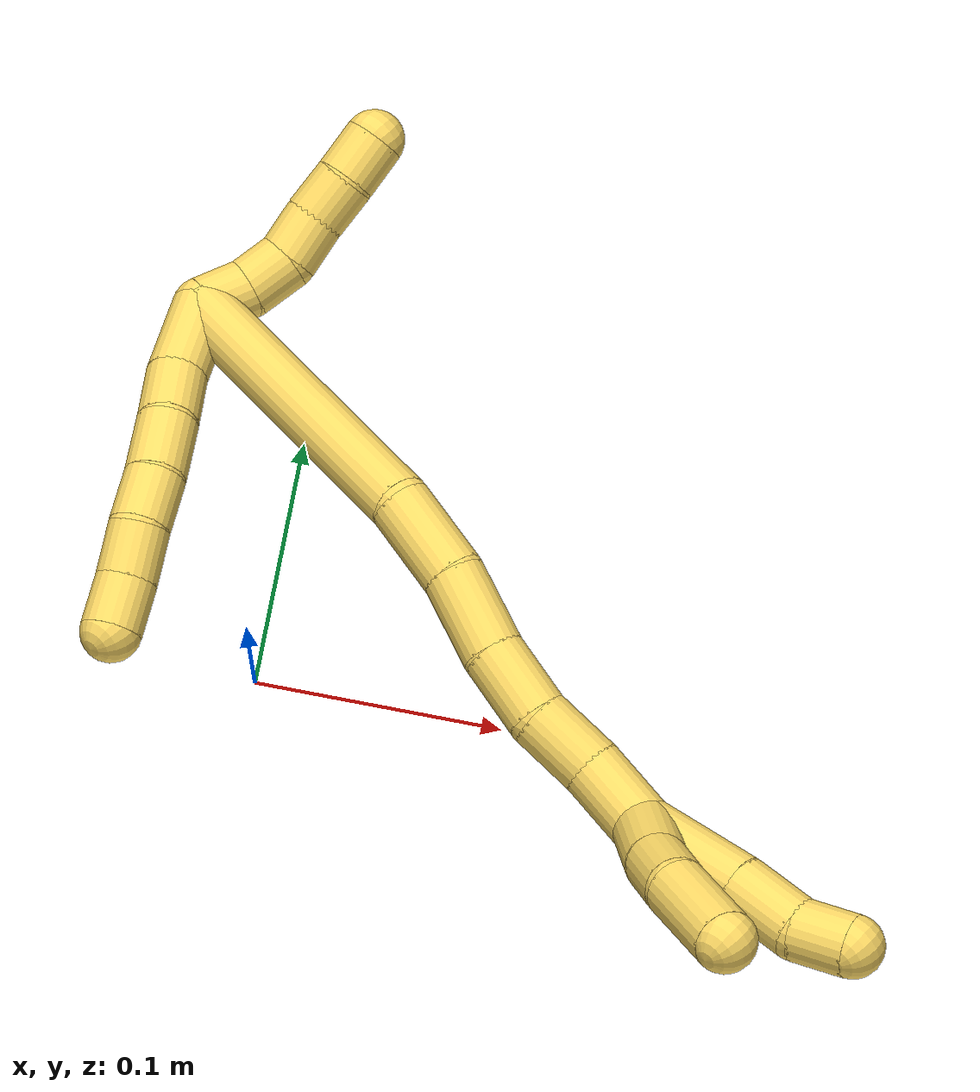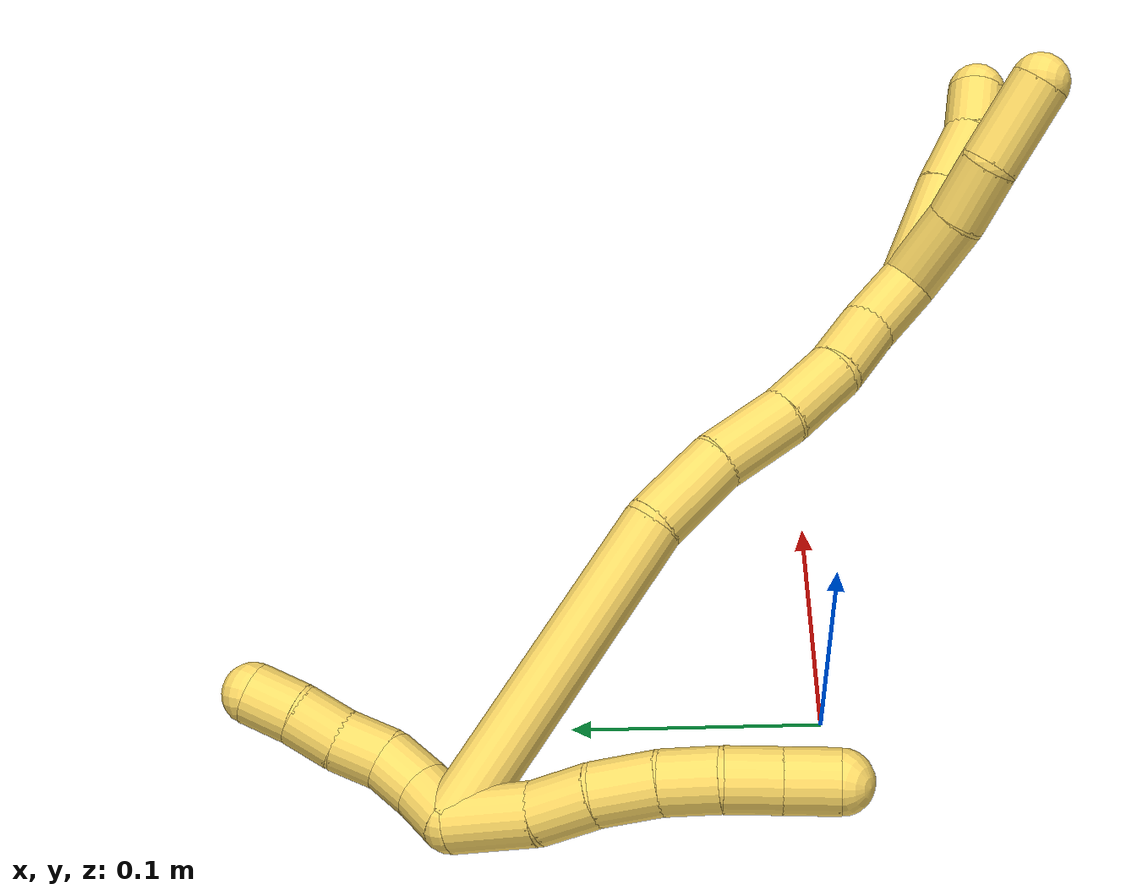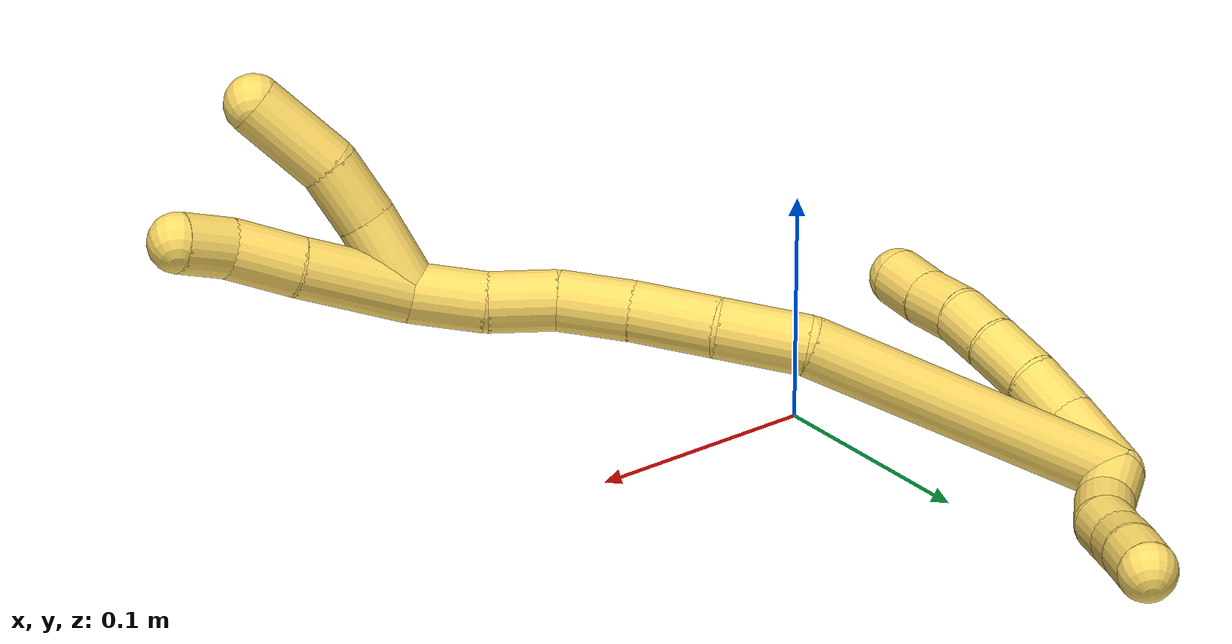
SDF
<sdf version="1.7">
 <world name="default">
  <model name="5">
   <static>0</static>
   <link name="5">
    <collision name="collision-cylinder-e_1_2_8">
     <pose>0.003651 -0.005954 0.01562 0.364192 0.215005 0.039738</pose>
     <geometry><cylinder><radius>0.0125</radius><length>0.034221</length></cylinder></geometry>
     <surface>
      <friction><ode><mu>1.16</mu><mu2>1.16</mu2><slip1>0</slip1><slip2>0</slip2></ode></friction>
      <contact><ode><kp>1e+06</kp><kd>1</kd><max_vel>0</max_vel><min_depth>0.001</min_depth></ode></contact>
     </surface>
    </collision>
    <visual name="visual-cylinder-e_1_2_8">
     <pose>0.003651 -0.005954 0.01562 0.364192 0.215005 0.039738</pose>
     <geometry><cylinder><radius>0.0125</radius><length>0.034221</length></cylinder></geometry>
     <material><ambient>1 0.858824 0.4 1</ambient></material>
    </visual>
    <collision name="collision-cylinder-e_2_8_9">
     <pose>0.012256 -0.01589 0.041576 0.367706 0.420613 0.079346</pose>
     <geometry><cylinder><radius>0.0125</radius><length>0.024267</length></cylinder></geometry>
     <surface>
      <friction><ode><mu>1.16</mu><mu2>1.16</mu2><slip1>0</slip1><slip2>0</slip2></ode></friction>
      <contact><ode><kp>1e+06</kp><kd>1</kd><max_vel>0</max_vel><min_depth>0.001</min_depth></ode></contact>
     </surface>
    </collision>
    <visual name="visual-cylinder-e_2_8_9">
     <pose>0.012256 -0.01589 0.041576 0.367706 0.420613 0.079346</pose>
     <geometry><cylinder><radius>0.0125</radius><length>0.024267</length></cylinder></geometry>
     <material><ambient>1 0.858824 0.4 1</ambient></material>
    </visual>
    <collision name="collision-cylinder-e_3_9_10">
     <pose>0.020749 -0.025283 0.0628 0.461195 0.283222 0.066916</pose>
     <geometry><cylinder><radius>0.0125</radius><length>0.025328</length></cylinder></geometry>
     <surface>
      <friction><ode><mu>1.16</mu><mu2>1.16</mu2><slip1>0</slip1><slip2>0</slip2></ode></friction>
      <contact><ode><kp>1e+06</kp><kd>1</kd><max_vel>0</max_vel><min_depth>0.001</min_depth></ode></contact>
     </surface>
    </collision>
    <visual name="visual-cylinder-e_3_9_10">
     <pose>0.020749 -0.025283 0.0628 0.461195 0.283222 0.066916</pose>
     <geometry><cylinder><radius>0.0125</radius><length>0.025328</length></cylinder></geometry>
     <material><ambient>1 0.858824 0.4 1</ambient></material>
    </visual>
    <collision name="collision-cylinder-e_4_10_11">
     <pose>0.026018 -0.035862 0.083582 0.481415 0.153837 0.037832</pose>
     <geometry><cylinder><radius>0.0125</radius><length>0.022589</length></cylinder></geometry>
     <surface>
      <friction><ode><mu>1.16</mu><mu2>1.16</mu2><slip1>0</slip1><slip2>0</slip2></ode></friction>
      <contact><ode><kp>1e+06</kp><kd>1</kd><max_vel>0</max_vel><min_depth>0.001</min_depth></ode></contact>
     </surface>
    </collision>
    <visual name="visual-cylinder-e_4_10_11">
     <pose>0.026018 -0.035862 0.083582 0.481415 0.153837 0.037832</pose>
     <geometry><cylinder><radius>0.0125</radius><length>0.022589</length></cylinder></geometry>
     <material><ambient>1 0.858824 0.4 1</ambient></material>
    </visual>
    <collision name="collision-cylinder-e_5_11_12">
     <pose>0.028243 -0.047692 0.102282 0.647607 0.044704 0.015005</pose>
     <geometry><cylinder><radius>0.0125</radius><length>0.02211</length></cylinder></geometry>
     <surface>
      <friction><ode><mu>1.16</mu><mu2>1.16</mu2><slip1>0</slip1><slip2>0</slip2></ode></friction>
      <contact><ode><kp>1e+06</kp><kd>1</kd><max_vel>0</max_vel><min_depth>0.001</min_depth></ode></contact>
     </surface>
    </collision>
    <visual name="visual-cylinder-e_5_11_12">
     <pose>0.028243 -0.047692 0.102282 0.647607 0.044704 0.015005</pose>
     <geometry><cylinder><radius>0.0125</radius><length>0.02211</length></cylinder></geometry>
     <material><ambient>1 0.858824 0.4 1</ambient></material>
    </visual>
    <collision name="collision-cylinder-e_6_12_6">
     <pose>0.029439 -0.060053 0.12017 0.560417 0.065389 0.018824</pose>
     <geometry><cylinder><radius>0.0125</radius><length>0.021486</length></cylinder></geometry>
     <surface>
      <friction><ode><mu>1.16</mu><mu2>1.16</mu2><slip1>0</slip1><slip2>0</slip2></ode></friction>
      <contact><ode><kp>1e+06</kp><kd>1</kd><max_vel>0</max_vel><min_depth>0.001</min_depth></ode></contact>
     </surface>
    </collision>
    <visual name="visual-cylinder-e_6_12_6">
     <pose>0.029439 -0.060053 0.12017 0.560417 0.065389 0.018824</pose>
     <geometry><cylinder><radius>0.0125</radius><length>0.021486</length></cylinder></geometry>
     <material><ambient>1 0.858824 0.4 1</ambient></material>
    </visual>
    <collision name="collision-cylinder-e_1_2_13">
     <pose>0.003672 -0.001607 -0.009162 2.96795 0.376005 2.28346</pose>
     <geometry><cylinder><radius>0.0125</radius><length>0.02</length></cylinder></geometry>
     <surface>
      <friction><ode><mu>1.16</mu><mu2>1.16</mu2><slip1>0</slip1><slip2>0</slip2></ode></friction>
      <contact><ode><kp>1e+06</kp><kd>1</kd><max_vel>0</max_vel><min_depth>0.001</min_depth></ode></contact>
     </surface>
    </collision>
    <visual name="visual-cylinder-e_1_2_13">
     <pose>0.003672 -0.001607 -0.009162 2.96795 0.376005 2.28346</pose>
     <geometry><cylinder><radius>0.0125</radius><length>0.02</length></cylinder></geometry>
     <material><ambient>1 0.858824 0.4 1</ambient></material>
    </visual>
    <collision name="collision-cylinder-e_2_13_14">
     <pose>0.011914 -0.001931 -0.027125 -2.99686 0.474613 -2.55916</pose>
     <geometry><cylinder><radius>0.0125</radius><length>0.02</length></cylinder></geometry>
     <surface>
      <friction><ode><mu>1.16</mu><mu2>1.16</mu2><slip1>0</slip1><slip2>0</slip2></ode></friction>
      <contact><ode><kp>1e+06</kp><kd>1</kd><max_vel>0</max_vel><min_depth>0.001</min_depth></ode></contact>
     </surface>
    </collision>
    <visual name="visual-cylinder-e_2_13_14">
     <pose>0.011914 -0.001931 -0.027125 -2.99686 0.474613 -2.55916</pose>
     <geometry><cylinder><radius>0.0125</radius><length>0.02</length></cylinder></geometry>
     <material><ambient>1 0.858824 0.4 1</ambient></material>
    </visual>
    <collision name="collision-cylinder-e_3_14_15">
     <pose>0.019358 0.003605 -0.044508 -2.68149 0.291558 -1.11995</pose>
     <geometry><cylinder><radius>0.0125</radius><length>0.02</length></cylinder></geometry>
     <surface>
      <friction><ode><mu>1.16</mu><mu2>1.16</mu2><slip1>0</slip1><slip2>0</slip2></ode></friction>
      <contact><ode><kp>1e+06</kp><kd>1</kd><max_vel>0</max_vel><min_depth>0.001</min_depth></ode></contact>
     </surface>
    </collision>
    <visual name="visual-cylinder-e_3_14_15">
     <pose>0.019358 0.003605 -0.044508 -2.68149 0.291558 -1.11995</pose>
     <geometry><cylinder><radius>0.0125</radius><length>0.02</length></cylinder></geometry>
     <material><ambient>1 0.858824 0.4 1</ambient></material>
    </visual>
    <collision name="collision-cylinder-e_4_15_16">
     <pose>0.02651 0.011993 -0.061129 -2.6665 0.44191 -1.49587</pose>
     <geometry><cylinder><radius>0.0125</radius><length>0.02</length></cylinder></geometry>
     <surface>
      <friction><ode><mu>1.16</mu><mu2>1.16</mu2><slip1>0</slip1><slip2>0</slip2></ode></friction>
      <contact><ode><kp>1e+06</kp><kd>1</kd><max_vel>0</max_vel><min_depth>0.001</min_depth></ode></contact>
     </surface>
    </collision>
    <visual name="visual-cylinder-e_4_15_16">
     <pose>0.02651 0.011993 -0.061129 -2.6665 0.44191 -1.49587</pose>
     <geometry><cylinder><radius>0.0125</radius><length>0.02</length></cylinder></geometry>
     <material><ambient>1 0.858824 0.4 1</ambient></material>
    </visual>
    <collision name="collision-cylinder-e_5_16_5">
     <pose>0.03385 0.020029 -0.077849 -2.71922 0.311379 -1.26396</pose>
     <geometry><cylinder><radius>0.0125</radius><length>0.02</length></cylinder></geometry>
     <surface>
      <friction><ode><mu>1.16</mu><mu2>1.16</mu2><slip1>0</slip1><slip2>0</slip2></ode></friction>
      <contact><ode><kp>1e+06</kp><kd>1</kd><max_vel>0</max_vel><min_depth>0.001</min_depth></ode></contact>
     </surface>
    </collision>
    <visual name="visual-cylinder-e_5_16_5">
     <pose>0.03385 0.020029 -0.077849 -2.71922 0.311379 -1.26396</pose>
     <geometry><cylinder><radius>0.0125</radius><length>0.02</length></cylinder></geometry>
     <material><ambient>1 0.858824 0.4 1</ambient></material>
    </visual>
    <collision name="collision-cylinder-e_1_2_17">
     <pose>0.057076 -0.032726 0.018515 1.05594 0.988279 0.608821</pose>
     <geometry><cylinder><radius>0.0125</radius><length>0.136697</length></cylinder></geometry>
     <surface>
      <friction><ode><mu>1.16</mu><mu2>1.16</mu2><slip1>0</slip1><slip2>0</slip2></ode></friction>
      <contact><ode><kp>1e+06</kp><kd>1</kd><max_vel>0</max_vel><min_depth>0.001</min_depth></ode></contact>
     </surface>
    </collision>
    <visual name="visual-cylinder-e_1_2_17">
     <pose>0.057076 -0.032726 0.018515 1.05594 0.988279 0.608821</pose>
     <geometry><cylinder><radius>0.0125</radius><length>0.136697</length></cylinder></geometry>
     <material><ambient>1 0.858824 0.4 1</ambient></material>
    </visual>
    <collision name="collision-cylinder-e_2_17_18">
     <pose>0.126463 -0.078472 0.04201 1.20545 0.723386 0.509392</pose>
     <geometry><cylinder><radius>0.0125</radius><length>0.037194</length></cylinder></geometry>
     <surface>
      <friction><ode><mu>1.16</mu><mu2>1.16</mu2><slip1>0</slip1><slip2>0</slip2></ode></friction>
      <contact><ode><kp>1e+06</kp><kd>1</kd><max_vel>0</max_vel><min_depth>0.001</min_depth></ode></contact>
     </surface>
    </collision>
    <visual name="visual-cylinder-e_2_17_18">
     <pose>0.126463 -0.078472 0.04201 1.20545 0.723386 0.509392</pose>
     <geometry><cylinder><radius>0.0125</radius><length>0.037194</length></cylinder></geometry>
     <material><ambient>1 0.858824 0.4 1</ambient></material>
    </visual>
    <collision name="collision-cylinder-e_3_18_19">
     <pose>0.148408 -0.104821 0.053593 1.11091 0.574795 0.362863</pose>
     <geometry><cylinder><radius>0.0125</radius><length>0.035447</length></cylinder></geometry>
     <surface>
      <friction><ode><mu>1.16</mu><mu2>1.16</mu2><slip1>0</slip1><slip2>0</slip2></ode></friction>
      <contact><ode><kp>1e+06</kp><kd>1</kd><max_vel>0</max_vel><min_depth>0.001</min_depth></ode></contact>
     </surface>
    </collision>
    <visual name="visual-cylinder-e_3_18_19">
     <pose>0.148408 -0.104821 0.053593 1.11091 0.574795 0.362863</pose>
     <geometry><cylinder><radius>0.0125</radius><length>0.035447</length></cylinder></geometry>
     <material><ambient>1 0.858824 0.4 1</ambient></material>
    </visual>
    <collision name="collision-cylinder-e_4_19_20">
     <pose>0.167571 -0.129646 0.06421 1.2348 0.663968 0.480091</pose>
     <geometry><cylinder><radius>0.0125</radius><length>0.030921</length></cylinder></geometry>
     <surface>
      <friction><ode><mu>1.16</mu><mu2>1.16</mu2><slip1>0</slip1><slip2>0</slip2></ode></friction>
      <contact><ode><kp>1e+06</kp><kd>1</kd><max_vel>0</max_vel><min_depth>0.001</min_depth></ode></contact>
     </surface>
    </collision>
    <visual name="visual-cylinder-e_4_19_20">
     <pose>0.167571 -0.129646 0.06421 1.2348 0.663968 0.480091</pose>
     <geometry><cylinder><radius>0.0125</radius><length>0.030921</length></cylinder></geometry>
     <material><ambient>1 0.858824 0.4 1</ambient></material>
    </visual>
    <collision name="collision-cylinder-e_5_20_21">
     <pose>0.186166 -0.152184 0.068659 1.53142 0.687088 0.662483</pose>
     <geometry><cylinder><radius>0.0125</radius><length>0.028589</length></cylinder></geometry>
     <surface>
      <friction><ode><mu>1.16</mu><mu2>1.16</mu2><slip1>0</slip1><slip2>0</slip2></ode></friction>
      <contact><ode><kp>1e+06</kp><kd>1</kd><max_vel>0</max_vel><min_depth>0.001</min_depth></ode></contact>
     </surface>
    </collision>
    <visual name="visual-cylinder-e_5_20_21">
     <pose>0.186166 -0.152184 0.068659 1.53142 0.687088 0.662483</pose>
     <geometry><cylinder><radius>0.0125</radius><length>0.028589</length></cylinder></geometry>
     <material><ambient>1 0.858824 0.4 1</ambient></material>
    </visual>
    <collision name="collision-cylinder-e_6_21_1">
     <pose>0.205739 -0.174355 0.071986 1.31662 0.740365 0.583161</pose>
     <geometry><cylinder><radius>0.0125</radius><length>0.031152</length></cylinder></geometry>
     <surface>
      <friction><ode><mu>1.16</mu><mu2>1.16</mu2><slip1>0</slip1><slip2>0</slip2></ode></friction>
      <contact><ode><kp>1e+06</kp><kd>1</kd><max_vel>0</max_vel><min_depth>0.001</min_depth></ode></contact>
     </surface>
    </collision>
    <visual name="visual-cylinder-e_6_21_1">
     <pose>0.205739 -0.174355 0.071986 1.31662 0.740365 0.583161</pose>
     <geometry><cylinder><radius>0.0125</radius><length>0.031152</length></cylinder></geometry>
     <material><ambient>1 0.858824 0.4 1</ambient></material>
    </visual>
    <collision name="collision-cylinder-e_1_1_22">
     <pose>0.229656 -0.184906 0.085491 -0.054489 0.900535 -0.026344</pose>
     <geometry><cylinder><radius>0.0125</radius><length>0.034223</length></cylinder></geometry>
     <surface>
      <friction><ode><mu>1.16</mu><mu2>1.16</mu2><slip1>0</slip1><slip2>0</slip2></ode></friction>
      <contact><ode><kp>1e+06</kp><kd>1</kd><max_vel>0</max_vel><min_depth>0.001</min_depth></ode></contact>
     </surface>
    </collision>
    <visual name="visual-cylinder-e_1_1_22">
     <pose>0.229656 -0.184906 0.085491 -0.054489 0.900535 -0.026344</pose>
     <geometry><cylinder><radius>0.0125</radius><length>0.034223</length></cylinder></geometry>
     <material><ambient>1 0.858824 0.4 1</ambient></material>
    </visual>
    <collision name="collision-cylinder-e_2_22_23">
     <pose>0.254515 -0.183959 0.102899 -0.054044 1.03457 -0.030754</pose>
     <geometry><cylinder><radius>0.0125</radius><length>0.026637</length></cylinder></geometry>
     <surface>
      <friction><ode><mu>1.16</mu><mu2>1.16</mu2><slip1>0</slip1><slip2>0</slip2></ode></friction>
      <contact><ode><kp>1e+06</kp><kd>1</kd><max_vel>0</max_vel><min_depth>0.001</min_depth></ode></contact>
     </surface>
    </collision>
    <visual name="visual-cylinder-e_2_22_23">
     <pose>0.254515 -0.183959 0.102899 -0.054044 1.03457 -0.030754</pose>
     <geometry><cylinder><radius>0.0125</radius><length>0.026637</length></cylinder></geometry>
     <material><ambient>1 0.858824 0.4 1</ambient></material>
    </visual>
    <collision name="collision-cylinder-e_3_23_4">
     <pose>0.283296 -0.187918 0.117685 0.496185 1.08784 0.304027</pose>
     <geometry><cylinder><radius>0.0125</radius><length>0.03914</length></cylinder></geometry>
     <surface>
      <friction><ode><mu>1.16</mu><mu2>1.16</mu2><slip1>0</slip1><slip2>0</slip2></ode></friction>
      <contact><ode><kp>1e+06</kp><kd>1</kd><max_vel>0</max_vel><min_depth>0.001</min_depth></ode></contact>
     </surface>
    </collision>
    <visual name="visual-cylinder-e_3_23_4">
     <pose>0.283296 -0.187918 0.117685 0.496185 1.08784 0.304027</pose>
     <geometry><cylinder><radius>0.0125</radius><length>0.03914</length></cylinder></geometry>
     <material><ambient>1 0.858824 0.4 1</ambient></material>
    </visual>
    <collision name="collision-cylinder-e_1_1_24">
     <pose>0.23698 -0.197253 0.075599 1.50951 1.05373 1.00125</pose>
     <geometry><cylinder><radius>0.0125</radius><length>0.047702</length></cylinder></geometry>
     <surface>
      <friction><ode><mu>1.16</mu><mu2>1.16</mu2><slip1>0</slip1><slip2>0</slip2></ode></friction>
      <contact><ode><kp>1e+06</kp><kd>1</kd><max_vel>0</max_vel><min_depth>0.001</min_depth></ode></contact>
     </surface>
    </collision>
    <visual name="visual-cylinder-e_1_1_24">
     <pose>0.23698 -0.197253 0.075599 1.50951 1.05373 1.00125</pose>
     <geometry><cylinder><radius>0.0125</radius><length>0.047702</length></cylinder></geometry>
     <material><ambient>1 0.858824 0.4 1</ambient></material>
    </visual>
    <collision name="collision-cylinder-e_2_24_25">
     <pose>0.270309 -0.216647 0.077982 1.3563 1.01611 0.843326</pose>
     <geometry><cylinder><radius>0.0125</radius><length>0.029636</length></cylinder></geometry>
     <surface>
      <friction><ode><mu>1.16</mu><mu2>1.16</mu2><slip1>0</slip1><slip2>0</slip2></ode></friction>
      <contact><ode><kp>1e+06</kp><kd>1</kd><max_vel>0</max_vel><min_depth>0.001</min_depth></ode></contact>
     </surface>
    </collision>
    <visual name="visual-cylinder-e_2_24_25">
     <pose>0.270309 -0.216647 0.077982 1.3563 1.01611 0.843326</pose>
     <geometry><cylinder><radius>0.0125</radius><length>0.029636</length></cylinder></geometry>
     <material><ambient>1 0.858824 0.4 1</ambient></material>
    </visual>
    <collision name="collision-cylinder-e_3_25_3">
     <pose>0.292976 -0.22895 0.077388 2.02009 1.09463 1.54078</pose>
     <geometry><cylinder><radius>0.0125</radius><length>0.022662</length></cylinder></geometry>
     <surface>
      <friction><ode><mu>1.16</mu><mu2>1.16</mu2><slip1>0</slip1><slip2>0</slip2></ode></friction>
      <contact><ode><kp>1e+06</kp><kd>1</kd><max_vel>0</max_vel><min_depth>0.001</min_depth></ode></contact>
     </surface>
    </collision>
    <visual name="visual-cylinder-e_3_25_3">
     <pose>0.292976 -0.22895 0.077388 2.02009 1.09463 1.54078</pose>
     <geometry><cylinder><radius>0.0125</radius><length>0.022662</length></cylinder></geometry>
     <material><ambient>1 0.858824 0.4 1</ambient></material>
    </visual>
    <collision name="collision-sphere-3">
     <pose>0.303046 -0.233629 0.075132 0 -0 0</pose>
     <geometry><sphere><radius>0.0125</radius></sphere></geometry>
     <surface>
      <friction><ode><mu>1.16</mu><mu2>1.16</mu2><slip1>0</slip1><slip2>0</slip2></ode></friction>
      <contact><ode><kp>1e+06</kp><kd>1</kd><max_vel>0</max_vel><min_depth>0.001</min_depth></ode></contact>
     </surface>
    </collision>
    <visual name="visual-sphere-3">
     <pose>0.303046 -0.233629 0.075132 0 -0 0</pose>
     <geometry><sphere><radius>0.0125</radius></sphere></geometry>
     <material><ambient>1 0.858824 0.4 1</ambient></material>
    </visual>
    <collision name="collision-sphere-25">
     <pose>0.282905 -0.224272 0.079643 0 -0 0</pose>
     <geometry><sphere><radius>0.0125</radius></sphere></geometry>
     <surface>
      <friction><ode><mu>1.16</mu><mu2>1.16</mu2><slip1>0</slip1><slip2>0</slip2></ode></friction>
      <contact><ode><kp>1e+06</kp><kd>1</kd><max_vel>0</max_vel><min_depth>0.001</min_depth></ode></contact>
     </surface>
    </collision>
    <visual name="visual-sphere-25">
     <pose>0.282905 -0.224272 0.079643 0 -0 0</pose>
     <geometry><sphere><radius>0.0125</radius></sphere></geometry>
     <material><ambient>1 0.858824 0.4 1</ambient></material>
    </visual>
    <collision name="collision-sphere-24">
     <pose>0.257713 -0.209021 0.076321 0 -0 0</pose>
     <geometry><sphere><radius>0.0125</radius></sphere></geometry>
     <surface>
      <friction><ode><mu>1.16</mu><mu2>1.16</mu2><slip1>0</slip1><slip2>0</slip2></ode></friction>
      <contact><ode><kp>1e+06</kp><kd>1</kd><max_vel>0</max_vel><min_depth>0.001</min_depth></ode></contact>
     </surface>
    </collision>
    <visual name="visual-sphere-24">
     <pose>0.257713 -0.209021 0.076321 0 -0 0</pose>
     <geometry><sphere><radius>0.0125</radius></sphere></geometry>
     <material><ambient>1 0.858824 0.4 1</ambient></material>
    </visual>
    <collision name="collision-sphere-4">
     <pose>0.300627 -0.192245 0.125678 0 -0 0</pose>
     <geometry><sphere><radius>0.0125</radius></sphere></geometry>
     <surface>
      <friction><ode><mu>1.16</mu><mu2>1.16</mu2><slip1>0</slip1><slip2>0</slip2></ode></friction>
      <contact><ode><kp>1e+06</kp><kd>1</kd><max_vel>0</max_vel><min_depth>0.001</min_depth></ode></contact>
     </surface>
    </collision>
    <visual name="visual-sphere-4">
     <pose>0.300627 -0.192245 0.125678 0 -0 0</pose>
     <geometry><sphere><radius>0.0125</radius></sphere></geometry>
     <material><ambient>1 0.858824 0.4 1</ambient></material>
    </visual>
    <collision name="collision-sphere-23">
     <pose>0.265964 -0.183592 0.109693 0 -0 0</pose>
     <geometry><sphere><radius>0.0125</radius></sphere></geometry>
     <surface>
      <friction><ode><mu>1.16</mu><mu2>1.16</mu2><slip1>0</slip1><slip2>0</slip2></ode></friction>
      <contact><ode><kp>1e+06</kp><kd>1</kd><max_vel>0</max_vel><min_depth>0.001</min_depth></ode></contact>
     </surface>
    </collision>
    <visual name="visual-sphere-23">
     <pose>0.265964 -0.183592 0.109693 0 -0 0</pose>
     <geometry><sphere><radius>0.0125</radius></sphere></geometry>
     <material><ambient>1 0.858824 0.4 1</ambient></material>
    </visual>
    <collision name="collision-sphere-22">
     <pose>0.243065 -0.184327 0.096104 0 -0 0</pose>
     <geometry><sphere><radius>0.0125</radius></sphere></geometry>
     <surface>
      <friction><ode><mu>1.16</mu><mu2>1.16</mu2><slip1>0</slip1><slip2>0</slip2></ode></friction>
      <contact><ode><kp>1e+06</kp><kd>1</kd><max_vel>0</max_vel><min_depth>0.001</min_depth></ode></contact>
     </surface>
    </collision>
    <visual name="visual-sphere-22">
     <pose>0.243065 -0.184327 0.096104 0 -0 0</pose>
     <geometry><sphere><radius>0.0125</radius></sphere></geometry>
     <material><ambient>1 0.858824 0.4 1</ambient></material>
    </visual>
    <collision name="collision-sphere-1">
     <pose>0.216246 -0.185485 0.074877 0 -0 0</pose>
     <geometry><sphere><radius>0.0125</radius></sphere></geometry>
     <surface>
      <friction><ode><mu>1.16</mu><mu2>1.16</mu2><slip1>0</slip1><slip2>0</slip2></ode></friction>
      <contact><ode><kp>1e+06</kp><kd>1</kd><max_vel>0</max_vel><min_depth>0.001</min_depth></ode></contact>
     </surface>
    </collision>
    <visual name="visual-sphere-1">
     <pose>0.216246 -0.185485 0.074877 0 -0 0</pose>
     <geometry><sphere><radius>0.0125</radius></sphere></geometry>
     <material><ambient>1 0.858824 0.4 1</ambient></material>
    </visual>
    <collision name="collision-sphere-21">
     <pose>0.195232 -0.163226 0.069094 0 -0 0</pose>
     <geometry><sphere><radius>0.0125</radius></sphere></geometry>
     <surface>
      <friction><ode><mu>1.16</mu><mu2>1.16</mu2><slip1>0</slip1><slip2>0</slip2></ode></friction>
      <contact><ode><kp>1e+06</kp><kd>1</kd><max_vel>0</max_vel><min_depth>0.001</min_depth></ode></contact>
     </surface>
    </collision>
    <visual name="visual-sphere-21">
     <pose>0.195232 -0.163226 0.069094 0 -0 0</pose>
     <geometry><sphere><radius>0.0125</radius></sphere></geometry>
     <material><ambient>1 0.858824 0.4 1</ambient></material>
    </visual>
    <collision name="collision-sphere-12">
     <pose>0.028737 -0.054355 0.11109 0 -0 0</pose>
     <geometry><sphere><radius>0.0125</radius></sphere></geometry>
     <surface>
      <friction><ode><mu>1.16</mu><mu2>1.16</mu2><slip1>0</slip1><slip2>0</slip2></ode></friction>
      <contact><ode><kp>1e+06</kp><kd>1</kd><max_vel>0</max_vel><min_depth>0.001</min_depth></ode></contact>
     </surface>
    </collision>
    <visual name="visual-sphere-12">
     <pose>0.028737 -0.054355 0.11109 0 -0 0</pose>
     <geometry><sphere><radius>0.0125</radius></sphere></geometry>
     <material><ambient>1 0.858824 0.4 1</ambient></material>
    </visual>
    <collision name="collision-sphere-11">
     <pose>0.027749 -0.04103 0.093474 0 -0 0</pose>
     <geometry><sphere><radius>0.0125</radius></sphere></geometry>
     <surface>
      <friction><ode><mu>1.16</mu><mu2>1.16</mu2><slip1>0</slip1><slip2>0</slip2></ode></friction>
      <contact><ode><kp>1e+06</kp><kd>1</kd><max_vel>0</max_vel><min_depth>0.001</min_depth></ode></contact>
     </surface>
    </collision>
    <visual name="visual-sphere-11">
     <pose>0.027749 -0.04103 0.093474 0 -0 0</pose>
     <geometry><sphere><radius>0.0125</radius></sphere></geometry>
     <material><ambient>1 0.858824 0.4 1</ambient></material>
    </visual>
    <collision name="collision-sphere-10">
     <pose>0.024288 -0.030694 0.07369 0 -0 0</pose>
     <geometry><sphere><radius>0.0125</radius></sphere></geometry>
     <surface>
      <friction><ode><mu>1.16</mu><mu2>1.16</mu2><slip1>0</slip1><slip2>0</slip2></ode></friction>
      <contact><ode><kp>1e+06</kp><kd>1</kd><max_vel>0</max_vel><min_depth>0.001</min_depth></ode></contact>
     </surface>
    </collision>
    <visual name="visual-sphere-10">
     <pose>0.024288 -0.030694 0.07369 0 -0 0</pose>
     <geometry><sphere><radius>0.0125</radius></sphere></geometry>
     <material><ambient>1 0.858824 0.4 1</ambient></material>
    </visual>
    <collision name="collision-sphere-9">
     <pose>0.01721 -0.019872 0.051911 0 -0 0</pose>
     <geometry><sphere><radius>0.0125</radius></sphere></geometry>
     <surface>
      <friction><ode><mu>1.16</mu><mu2>1.16</mu2><slip1>0</slip1><slip2>0</slip2></ode></friction>
      <contact><ode><kp>1e+06</kp><kd>1</kd><max_vel>0</max_vel><min_depth>0.001</min_depth></ode></contact>
     </surface>
    </collision>
    <visual name="visual-sphere-9">
     <pose>0.01721 -0.019872 0.051911 0 -0 0</pose>
     <geometry><sphere><radius>0.0125</radius></sphere></geometry>
     <material><ambient>1 0.858824 0.4 1</ambient></material>
    </visual>
    <collision name="collision-sphere-2">
     <geometry><sphere><radius>0.0125</radius></sphere></geometry>
     <surface>
      <friction><ode><mu>1.16</mu><mu2>1.16</mu2><slip1>0</slip1><slip2>0</slip2></ode></friction>
      <contact><ode><kp>1e+06</kp><kd>1</kd><max_vel>0</max_vel><min_depth>0.001</min_depth></ode></contact>
     </surface>
    </collision>
    <visual name="visual-sphere-2">
     <geometry><sphere><radius>0.0125</radius></sphere></geometry>
     <material><ambient>1 0.858824 0.4 1</ambient></material>
    </visual>
    <collision name="collision-sphere-19">
     <pose>0.158044 -0.118151 0.060195 0 -0 0</pose>
     <geometry><sphere><radius>0.0125</radius></sphere></geometry>
     <surface>
      <friction><ode><mu>1.16</mu><mu2>1.16</mu2><slip1>0</slip1><slip2>0</slip2></ode></friction>
      <contact><ode><kp>1e+06</kp><kd>1</kd><max_vel>0</max_vel><min_depth>0.001</min_depth></ode></contact>
     </surface>
    </collision>
    <visual name="visual-sphere-19">
     <pose>0.158044 -0.118151 0.060195 0 -0 0</pose>
     <geometry><sphere><radius>0.0125</radius></sphere></geometry>
     <material><ambient>1 0.858824 0.4 1</ambient></material>
    </visual>
    <collision name="collision-sphere-8">
     <pose>0.007301 -0.011909 0.03124 0 -0 0</pose>
     <geometry><sphere><radius>0.0125</radius></sphere></geometry>
     <surface>
      <friction><ode><mu>1.16</mu><mu2>1.16</mu2><slip1>0</slip1><slip2>0</slip2></ode></friction>
      <contact><ode><kp>1e+06</kp><kd>1</kd><max_vel>0</max_vel><min_depth>0.001</min_depth></ode></contact>
     </surface>
    </collision>
    <visual name="visual-sphere-8">
     <pose>0.007301 -0.011909 0.03124 0 -0 0</pose>
     <geometry><sphere><radius>0.0125</radius></sphere></geometry>
     <material><ambient>1 0.858824 0.4 1</ambient></material>
    </visual>
    <collision name="collision-sphere-6">
     <pose>0.030141 -0.065751 0.12925 0 -0 0</pose>
     <geometry><sphere><radius>0.0125</radius></sphere></geometry>
     <surface>
      <friction><ode><mu>1.16</mu><mu2>1.16</mu2><slip1>0</slip1><slip2>0</slip2></ode></friction>
      <contact><ode><kp>1e+06</kp><kd>1</kd><max_vel>0</max_vel><min_depth>0.001</min_depth></ode></contact>
     </surface>
    </collision>
    <visual name="visual-sphere-6">
     <pose>0.030141 -0.065751 0.12925 0 -0 0</pose>
     <geometry><sphere><radius>0.0125</radius></sphere></geometry>
     <material><ambient>1 0.858824 0.4 1</ambient></material>
    </visual>
    <collision name="collision-sphere-13">
     <pose>0.007344 -0.003214 -0.018323 0 -0 0</pose>
     <geometry><sphere><radius>0.0125</radius></sphere></geometry>
     <surface>
      <friction><ode><mu>1.16</mu><mu2>1.16</mu2><slip1>0</slip1><slip2>0</slip2></ode></friction>
      <contact><ode><kp>1e+06</kp><kd>1</kd><max_vel>0</max_vel><min_depth>0.001</min_depth></ode></contact>
     </surface>
    </collision>
    <visual name="visual-sphere-13">
     <pose>0.007344 -0.003214 -0.018323 0 -0 0</pose>
     <geometry><sphere><radius>0.0125</radius></sphere></geometry>
     <material><ambient>1 0.858824 0.4 1</ambient></material>
    </visual>
    <collision name="collision-sphere-14">
     <pose>0.016484 -0.000648 -0.035926 0 -0 0</pose>
     <geometry><sphere><radius>0.0125</radius></sphere></geometry>
     <surface>
      <friction><ode><mu>1.16</mu><mu2>1.16</mu2><slip1>0</slip1><slip2>0</slip2></ode></friction>
      <contact><ode><kp>1e+06</kp><kd>1</kd><max_vel>0</max_vel><min_depth>0.001</min_depth></ode></contact>
     </surface>
    </collision>
    <visual name="visual-sphere-14">
     <pose>0.016484 -0.000648 -0.035926 0 -0 0</pose>
     <geometry><sphere><radius>0.0125</radius></sphere></geometry>
     <material><ambient>1 0.858824 0.4 1</ambient></material>
    </visual>
    <collision name="collision-sphere-15">
     <pose>0.022233 0.007858 -0.05309 0 -0 0</pose>
     <geometry><sphere><radius>0.0125</radius></sphere></geometry>
     <surface>
      <friction><ode><mu>1.16</mu><mu2>1.16</mu2><slip1>0</slip1><slip2>0</slip2></ode></friction>
      <contact><ode><kp>1e+06</kp><kd>1</kd><max_vel>0</max_vel><min_depth>0.001</min_depth></ode></contact>
     </surface>
    </collision>
    <visual name="visual-sphere-15">
     <pose>0.022233 0.007858 -0.05309 0 -0 0</pose>
     <geometry><sphere><radius>0.0125</radius></sphere></geometry>
     <material><ambient>1 0.858824 0.4 1</ambient></material>
    </visual>
    <collision name="collision-sphere-16">
     <pose>0.030786 0.016127 -0.069167 0 -0 0</pose>
     <geometry><sphere><radius>0.0125</radius></sphere></geometry>
     <surface>
      <friction><ode><mu>1.16</mu><mu2>1.16</mu2><slip1>0</slip1><slip2>0</slip2></ode></friction>
      <contact><ode><kp>1e+06</kp><kd>1</kd><max_vel>0</max_vel><min_depth>0.001</min_depth></ode></contact>
     </surface>
    </collision>
    <visual name="visual-sphere-16">
     <pose>0.030786 0.016127 -0.069167 0 -0 0</pose>
     <geometry><sphere><radius>0.0125</radius></sphere></geometry>
     <material><ambient>1 0.858824 0.4 1</ambient></material>
    </visual>
    <collision name="collision-sphere-5">
     <pose>0.036914 0.023932 -0.086532 0 -0 0</pose>
     <geometry><sphere><radius>0.0125</radius></sphere></geometry>
     <surface>
      <friction><ode><mu>1.16</mu><mu2>1.16</mu2><slip1>0</slip1><slip2>0</slip2></ode></friction>
      <contact><ode><kp>1e+06</kp><kd>1</kd><max_vel>0</max_vel><min_depth>0.001</min_depth></ode></contact>
     </surface>
    </collision>
    <visual name="visual-sphere-5">
     <pose>0.036914 0.023932 -0.086532 0 -0 0</pose>
     <geometry><sphere><radius>0.0125</radius></sphere></geometry>
     <material><ambient>1 0.858824 0.4 1</ambient></material>
    </visual>
    <collision name="collision-sphere-17">
     <pose>0.114153 -0.065452 0.03703 0 -0 0</pose>
     <geometry><sphere><radius>0.0125</radius></sphere></geometry>
     <surface>
      <friction><ode><mu>1.16</mu><mu2>1.16</mu2><slip1>0</slip1><slip2>0</slip2></ode></friction>
      <contact><ode><kp>1e+06</kp><kd>1</kd><max_vel>0</max_vel><min_depth>0.001</min_depth></ode></contact>
     </surface>
    </collision>
    <visual name="visual-sphere-17">
     <pose>0.114153 -0.065452 0.03703 0 -0 0</pose>
     <geometry><sphere><radius>0.0125</radius></sphere></geometry>
     <material><ambient>1 0.858824 0.4 1</ambient></material>
    </visual>
    <collision name="collision-sphere-18">
     <pose>0.138773 -0.091491 0.04699 0 -0 0</pose>
     <geometry><sphere><radius>0.0125</radius></sphere></geometry>
     <surface>
      <friction><ode><mu>1.16</mu><mu2>1.16</mu2><slip1>0</slip1><slip2>0</slip2></ode></friction>
      <contact><ode><kp>1e+06</kp><kd>1</kd><max_vel>0</max_vel><min_depth>0.001</min_depth></ode></contact>
     </surface>
    </collision>
    <visual name="visual-sphere-18">
     <pose>0.138773 -0.091491 0.04699 0 -0 0</pose>
     <geometry><sphere><radius>0.0125</radius></sphere></geometry>
     <material><ambient>1 0.858824 0.4 1</ambient></material>
    </visual>
    <collision name="collision-sphere-20">
     <pose>0.177099 -0.141141 0.068224 0 -0 0</pose>
     <geometry><sphere><radius>0.0125</radius></sphere></geometry>
     <surface>
      <friction><ode><mu>1.16</mu><mu2>1.16</mu2><slip1>0</slip1><slip2>0</slip2></ode></friction>
      <contact><ode><kp>1e+06</kp><kd>1</kd><max_vel>0</max_vel><min_depth>0.001</min_depth></ode></contact>
     </surface>
    </collision>
    <visual name="visual-sphere-20">
     <pose>0.177099 -0.141141 0.068224 0 -0 0</pose>
     <geometry><sphere><radius>0.0125</radius></sphere></geometry>
     <material><ambient>1 0.858824 0.4 1</ambient></material>
    </visual>
    <inertial>
     <pose>0.121413 -0.090991 0.047464 0 -0 0</pose>
     <mass>0.75</mass>
     <inertia><ixx>0.000254</ixx><ixy>0</ixy><ixz>0</ixz><iyy>0.000291</iyy><iyz>0</iyz><izz>-8e-05</izz></inertia>
    </inertial>
   </link>
   <pose>-0.049972 0.144309 0.016135 0.998486 -0.788202 -0.11608</pose>
  </model>
 </world>
</sdf>
